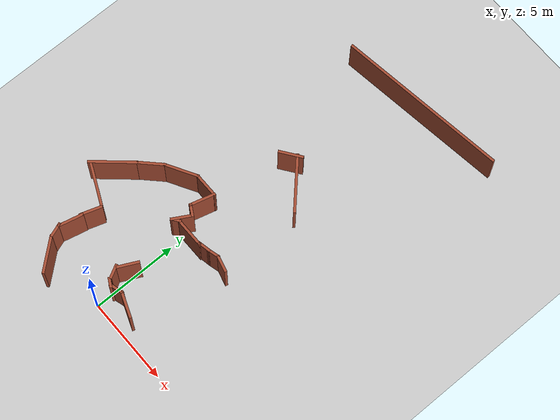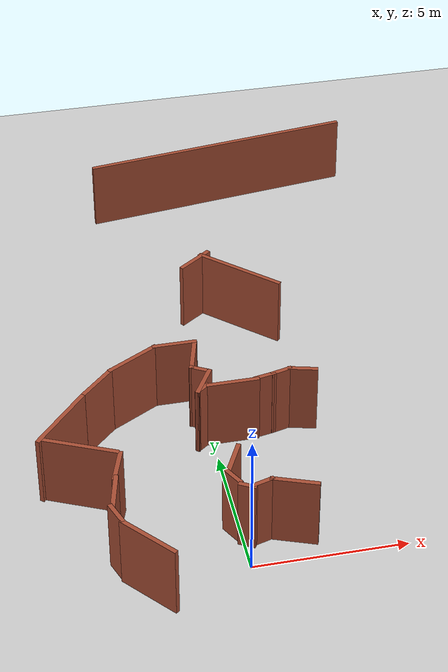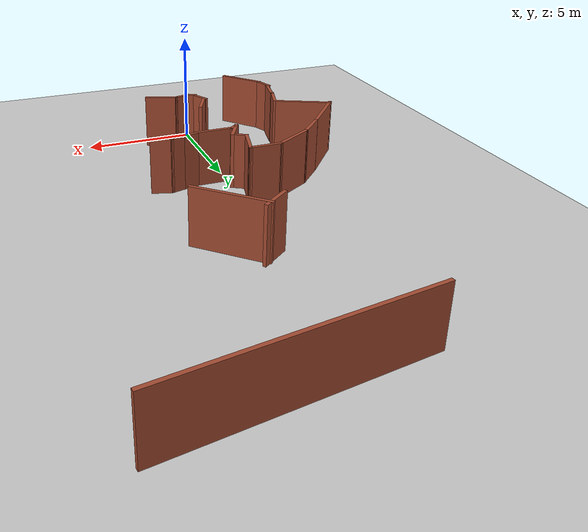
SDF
<sdf version="1.5">
 <world name="default">
  <model name="ground_plane">
   <static>1</static>
   <link name="link">
    <collision name="collision">
     <geometry><plane><normal>0 0 1</normal><size>100 100</size></plane></geometry>
     <surface><friction><ode><mu>100</mu><mu2>50</mu2></ode></friction></surface>
    </collision>
    <visual name="visual">
     <cast_shadows>0</cast_shadows>
     <geometry><plane><normal>0 0 1</normal><size>100 100</size></plane></geometry>
     <material>
      <script><uri>file://media/materials/scripts/gazebo.material</uri><name>Gazebo/Grey</name></script>
     </material>
    </visual>
   </link>
  </model>
  <model name="Untitled1111">
   <link name="Wall_0">
    <pose>-5.60346 -1.19188 0 0 -0 2.26915</pose>
    <visual name="Wall_0_Visual">
     <pose>0 0 1.25 0 -0 0</pose>
     <geometry><box><size>2.13585 0.15 2.5</size></box></geometry>
     <material>
      <script><uri>file://media/materials/scripts/gazebo.material</uri><name>Gazebo/Bricks</name></script>
      <ambient>1 1 1 1</ambient>
      <shader type="pixel"/>
     </material>
     <meta><layer>0</layer></meta>
    </visual>
    <collision name="Wall_0_Collision">
     <pose>0 0 1.25 0 -0 0</pose>
     <geometry><box><size>2.13585 0.15 2.5</size></box></geometry>
     <surface>
      <friction>
       <ode><mu>1</mu><mu2>1</mu2><fdir1>0 0 0</fdir1><slip1>0</slip1><slip2>0</slip2></ode>
       <torsional>
        <coefficient>1</coefficient>
        <patch_radius>0</patch_radius>
        <surface_radius>0</surface_radius>
        <use_patch_radius>1</use_patch_radius>
        <ode><slip>0</slip></ode>
       </torsional>
      </friction>
      <bounce><restitution_coefficient>0</restitution_coefficient><threshold>1e+06</threshold></bounce>
      <contact>
       <collide_without_contact>0</collide_without_contact>
       <collide_without_contact_bitmask>1</collide_without_contact_bitmask>
       <collide_bitmask>1</collide_bitmask>
       <ode>
        <soft_cfm>0</soft_cfm>
        <soft_erp>0.2</soft_erp>
        <kp>1e+13</kp>
        <kd>1</kd>
        <max_vel>0.01</max_vel>
        <min_depth>0</min_depth>
       </ode>
       <bullet>
        <split_impulse>1</split_impulse>
        <split_impulse_penetration_threshold>-0.01</split_impulse_penetration_threshold>
        <soft_cfm>0</soft_cfm>
        <soft_erp>0.2</soft_erp>
        <kp>1e+13</kp>
        <kd>1</kd>
       </bullet>
      </contact>
     </surface>
    </collision>
   </link>
   <link name="Wall_1">
    <pose>-6.35977 -0.045403 0 0 -0 1.91127</pose>
    <visual name="Wall_1_Visual">
     <pose>0 0 1.25 0 -0 0</pose>
     <geometry><box><size>0.856129 0.15 2.5</size></box></geometry>
     <material>
      <script><uri>file://media/materials/scripts/gazebo.material</uri><name>Gazebo/Bricks</name></script>
      <ambient>1 1 1 1</ambient>
      <shader type="pixel"/>
     </material>
     <meta><layer>0</layer></meta>
    </visual>
    <collision name="Wall_1_Collision">
     <pose>0 0 1.25 0 -0 0</pose>
     <geometry><box><size>0.856129 0.15 2.5</size></box></geometry>
     <surface>
      <friction>
       <ode><mu>1</mu><mu2>1</mu2><fdir1>0 0 0</fdir1><slip1>0</slip1><slip2>0</slip2></ode>
       <torsional>
        <coefficient>1</coefficient>
        <patch_radius>0</patch_radius>
        <surface_radius>0</surface_radius>
        <use_patch_radius>1</use_patch_radius>
        <ode><slip>0</slip></ode>
       </torsional>
      </friction>
      <bounce><restitution_coefficient>0</restitution_coefficient><threshold>1e+06</threshold></bounce>
      <contact>
       <collide_without_contact>0</collide_without_contact>
       <collide_without_contact_bitmask>1</collide_without_contact_bitmask>
       <collide_bitmask>1</collide_bitmask>
       <ode>
        <soft_cfm>0</soft_cfm>
        <soft_erp>0.2</soft_erp>
        <kp>1e+13</kp>
        <kd>1</kd>
        <max_vel>0.01</max_vel>
        <min_depth>0</min_depth>
       </ode>
       <bullet>
        <split_impulse>1</split_impulse>
        <split_impulse_penetration_threshold>-0.01</split_impulse_penetration_threshold>
        <soft_cfm>0</soft_cfm>
        <soft_erp>0.2</soft_erp>
        <kp>1e+13</kp>
        <kd>1</kd>
       </bullet>
      </contact>
     </surface>
    </collision>
   </link>
   <link name="Wall_10">
    <pose>-2.6358 6.01879 0 0 0 -0.523599</pose>
    <visual name="Wall_10_Visual">
     <pose>0 0 1.25 0 -0 0</pose>
     <geometry><box><size>0.75 0.15 2.5</size></box></geometry>
     <material>
      <script><uri>file://media/materials/scripts/gazebo.material</uri><name>Gazebo/Bricks</name></script>
      <ambient>1 1 1 1</ambient>
      <shader type="pixel"/>
     </material>
     <meta><layer>0</layer></meta>
    </visual>
    <collision name="Wall_10_Collision">
     <pose>0 0 1.25 0 -0 0</pose>
     <geometry><box><size>0.75 0.15 2.5</size></box></geometry>
     <surface>
      <friction>
       <ode><mu>1</mu><mu2>1</mu2><fdir1>0 0 0</fdir1><slip1>0</slip1><slip2>0</slip2></ode>
       <torsional>
        <coefficient>1</coefficient>
        <patch_radius>0</patch_radius>
        <surface_radius>0</surface_radius>
        <use_patch_radius>1</use_patch_radius>
        <ode><slip>0</slip></ode>
       </torsional>
      </friction>
      <bounce><restitution_coefficient>0</restitution_coefficient><threshold>1e+06</threshold></bounce>
      <contact>
       <collide_without_contact>0</collide_without_contact>
       <collide_without_contact_bitmask>1</collide_without_contact_bitmask>
       <collide_bitmask>1</collide_bitmask>
       <ode>
        <soft_cfm>0</soft_cfm>
        <soft_erp>0.2</soft_erp>
        <kp>1e+13</kp>
        <kd>1</kd>
        <max_vel>0.01</max_vel>
        <min_depth>0</min_depth>
       </ode>
       <bullet>
        <split_impulse>1</split_impulse>
        <split_impulse_penetration_threshold>-0.01</split_impulse_penetration_threshold>
        <soft_cfm>0</soft_cfm>
        <soft_erp>0.2</soft_erp>
        <kp>1e+13</kp>
        <kd>1</kd>
       </bullet>
      </contact>
     </surface>
    </collision>
   </link>
   <link name="Wall_11">
    <pose>-2.65099 5.39248 0 0 0 -2.0944</pose>
    <visual name="Wall_11_Visual">
     <pose>0 0 1.25 0 -0 0</pose>
     <geometry><box><size>1.25 0.15 2.5</size></box></geometry>
     <material>
      <script><uri>file://media/materials/scripts/gazebo.material</uri><name>Gazebo/Bricks</name></script>
      <ambient>1 1 1 1</ambient>
      <shader type="pixel"/>
     </material>
     <meta><layer>0</layer></meta>
    </visual>
    <collision name="Wall_11_Collision">
     <pose>0 0 1.25 0 -0 0</pose>
     <geometry><box><size>1.25 0.15 2.5</size></box></geometry>
     <surface>
      <friction>
       <ode><mu>1</mu><mu2>1</mu2><fdir1>0 0 0</fdir1><slip1>0</slip1><slip2>0</slip2></ode>
       <torsional>
        <coefficient>1</coefficient>
        <patch_radius>0</patch_radius>
        <surface_radius>0</surface_radius>
        <use_patch_radius>1</use_patch_radius>
        <ode><slip>0</slip></ode>
       </torsional>
      </friction>
      <bounce><restitution_coefficient>0</restitution_coefficient><threshold>1e+06</threshold></bounce>
      <contact>
       <collide_without_contact>0</collide_without_contact>
       <collide_without_contact_bitmask>1</collide_without_contact_bitmask>
       <collide_bitmask>1</collide_bitmask>
       <ode>
        <soft_cfm>0</soft_cfm>
        <soft_erp>0.2</soft_erp>
        <kp>1e+13</kp>
        <kd>1</kd>
        <max_vel>0.01</max_vel>
        <min_depth>0</min_depth>
       </ode>
       <bullet>
        <split_impulse>1</split_impulse>
        <split_impulse_penetration_threshold>-0.01</split_impulse_penetration_threshold>
        <soft_cfm>0</soft_cfm>
        <soft_erp>0.2</soft_erp>
        <kp>1e+13</kp>
        <kd>1</kd>
       </bullet>
      </contact>
     </surface>
    </collision>
   </link>
   <link name="Wall_12">
    <pose>-2.75032 5.05347 0 0 -0 0.663411</pose>
    <visual name="Wall_12_Visual">
     <pose>0 0 1.25 0 -0 0</pose>
     <geometry><box><size>0.595922 0.15 2.5</size></box></geometry>
     <material>
      <script><uri>file://media/materials/scripts/gazebo.material</uri><name>Gazebo/Bricks</name></script>
      <ambient>1 1 1 1</ambient>
      <shader type="pixel"/>
     </material>
     <meta><layer>0</layer></meta>
    </visual>
    <collision name="Wall_12_Collision">
     <pose>0 0 1.25 0 -0 0</pose>
     <geometry><box><size>0.595922 0.15 2.5</size></box></geometry>
     <surface>
      <friction>
       <ode><mu>1</mu><mu2>1</mu2><fdir1>0 0 0</fdir1><slip1>0</slip1><slip2>0</slip2></ode>
       <torsional>
        <coefficient>1</coefficient>
        <patch_radius>0</patch_radius>
        <surface_radius>0</surface_radius>
        <use_patch_radius>1</use_patch_radius>
        <ode><slip>0</slip></ode>
       </torsional>
      </friction>
      <bounce><restitution_coefficient>0</restitution_coefficient><threshold>1e+06</threshold></bounce>
      <contact>
       <collide_without_contact>0</collide_without_contact>
       <collide_without_contact_bitmask>1</collide_without_contact_bitmask>
       <collide_bitmask>1</collide_bitmask>
       <ode>
        <soft_cfm>0</soft_cfm>
        <soft_erp>0.2</soft_erp>
        <kp>1e+13</kp>
        <kd>1</kd>
        <max_vel>0.01</max_vel>
        <min_depth>0</min_depth>
       </ode>
       <bullet>
        <split_impulse>1</split_impulse>
        <split_impulse_penetration_threshold>-0.01</split_impulse_penetration_threshold>
        <soft_cfm>0</soft_cfm>
        <soft_erp>0.2</soft_erp>
        <kp>1e+13</kp>
        <kd>1</kd>
       </bullet>
      </contact>
     </surface>
    </collision>
   </link>
   <link name="Wall_13">
    <pose>-1.73967 5.15579 0 0 -0 0</pose>
    <visual name="Wall_13_Visual">
     <pose>0 0 1.25 0 -0 0</pose>
     <geometry><box><size>1.75 0.15 2.5</size></box></geometry>
     <material>
      <script><uri>file://media/materials/scripts/gazebo.material</uri><name>Gazebo/Bricks</name></script>
      <ambient>1 1 1 1</ambient>
      <shader type="pixel"/>
     </material>
     <meta><layer>0</layer></meta>
    </visual>
    <collision name="Wall_13_Collision">
     <pose>0 0 1.25 0 -0 0</pose>
     <geometry><box><size>1.75 0.15 2.5</size></box></geometry>
     <surface>
      <friction>
       <ode><mu>1</mu><mu2>1</mu2><fdir1>0 0 0</fdir1><slip1>0</slip1><slip2>0</slip2></ode>
       <torsional>
        <coefficient>1</coefficient>
        <patch_radius>0</patch_radius>
        <surface_radius>0</surface_radius>
        <use_patch_radius>1</use_patch_radius>
        <ode><slip>0</slip></ode>
       </torsional>
      </friction>
      <bounce><restitution_coefficient>0</restitution_coefficient><threshold>1e+06</threshold></bounce>
      <contact>
       <collide_without_contact>0</collide_without_contact>
       <collide_without_contact_bitmask>1</collide_without_contact_bitmask>
       <collide_bitmask>1</collide_bitmask>
       <ode>
        <soft_cfm>0</soft_cfm>
        <soft_erp>0.2</soft_erp>
        <kp>1e+13</kp>
        <kd>1</kd>
        <max_vel>0.01</max_vel>
        <min_depth>0</min_depth>
       </ode>
       <bullet>
        <split_impulse>1</split_impulse>
        <split_impulse_penetration_threshold>-0.01</split_impulse_penetration_threshold>
        <soft_cfm>0</soft_cfm>
        <soft_erp>0.2</soft_erp>
        <kp>1e+13</kp>
        <kd>1</kd>
       </bullet>
      </contact>
     </surface>
    </collision>
   </link>
   <link name="Wall_14">
    <pose>-0.672263 5.25149 0 0 -0 0.198157</pose>
    <visual name="Wall_14_Visual">
     <pose>0 0 1.25 0 -0 0</pose>
     <geometry><box><size>0.766849 0.15 2.5</size></box></geometry>
     <material>
      <script><uri>file://media/materials/scripts/gazebo.material</uri><name>Gazebo/Bricks</name></script>
      <ambient>1 1 1 1</ambient>
      <shader type="pixel"/>
     </material>
     <meta><layer>0</layer></meta>
    </visual>
    <collision name="Wall_14_Collision">
     <pose>0 0 1.25 0 -0 0</pose>
     <geometry><box><size>0.766849 0.15 2.5</size></box></geometry>
     <surface>
      <friction>
       <ode><mu>1</mu><mu2>1</mu2><fdir1>0 0 0</fdir1><slip1>0</slip1><slip2>0</slip2></ode>
       <torsional>
        <coefficient>1</coefficient>
        <patch_radius>0</patch_radius>
        <surface_radius>0</surface_radius>
        <use_patch_radius>1</use_patch_radius>
        <ode><slip>0</slip></ode>
       </torsional>
      </friction>
      <bounce><restitution_coefficient>0</restitution_coefficient><threshold>1e+06</threshold></bounce>
      <contact>
       <collide_without_contact>0</collide_without_contact>
       <collide_without_contact_bitmask>1</collide_without_contact_bitmask>
       <collide_bitmask>1</collide_bitmask>
       <ode>
        <soft_cfm>0</soft_cfm>
        <soft_erp>0.2</soft_erp>
        <kp>1e+13</kp>
        <kd>1</kd>
        <max_vel>0.01</max_vel>
        <min_depth>0</min_depth>
       </ode>
       <bullet>
        <split_impulse>1</split_impulse>
        <split_impulse_penetration_threshold>-0.01</split_impulse_penetration_threshold>
        <soft_cfm>0</soft_cfm>
        <soft_erp>0.2</soft_erp>
        <kp>1e+13</kp>
        <kd>1</kd>
       </bullet>
      </contact>
     </surface>
    </collision>
   </link>
   <link name="Wall_15">
    <pose>-0.080096 5.38985 0 0 -0 0.261799</pose>
    <visual name="Wall_15_Visual">
     <pose>0 0 1.25 0 -0 0</pose>
     <geometry><box><size>0.75 0.15 2.5</size></box></geometry>
     <material>
      <script><uri>file://media/materials/scripts/gazebo.material</uri><name>Gazebo/Bricks</name></script>
      <ambient>1 1 1 1</ambient>
      <shader type="pixel"/>
     </material>
     <meta><layer>0</layer></meta>
    </visual>
    <collision name="Wall_15_Collision">
     <pose>0 0 1.25 0 -0 0</pose>
     <geometry><box><size>0.75 0.15 2.5</size></box></geometry>
     <surface>
      <friction>
       <ode><mu>1</mu><mu2>1</mu2><fdir1>0 0 0</fdir1><slip1>0</slip1><slip2>0</slip2></ode>
       <torsional>
        <coefficient>1</coefficient>
        <patch_radius>0</patch_radius>
        <surface_radius>0</surface_radius>
        <use_patch_radius>1</use_patch_radius>
        <ode><slip>0</slip></ode>
       </torsional>
      </friction>
      <bounce><restitution_coefficient>0</restitution_coefficient><threshold>1e+06</threshold></bounce>
      <contact>
       <collide_without_contact>0</collide_without_contact>
       <collide_without_contact_bitmask>1</collide_without_contact_bitmask>
       <collide_bitmask>1</collide_bitmask>
       <ode>
        <soft_cfm>0</soft_cfm>
        <soft_erp>0.2</soft_erp>
        <kp>1e+13</kp>
        <kd>1</kd>
        <max_vel>0.01</max_vel>
        <min_depth>0</min_depth>
       </ode>
       <bullet>
        <split_impulse>1</split_impulse>
        <split_impulse_penetration_threshold>-0.01</split_impulse_penetration_threshold>
        <soft_cfm>0</soft_cfm>
        <soft_erp>0.2</soft_erp>
        <kp>1e+13</kp>
        <kd>1</kd>
       </bullet>
      </contact>
     </surface>
    </collision>
   </link>
   <link name="Wall_16">
    <pose>0.6202 5.3575 0 0 0 -0.261799</pose>
    <visual name="Wall_16_Visual">
     <pose>0 0 1.25 0 -0 0</pose>
     <geometry><box><size>1 0.15 2.5</size></box></geometry>
     <material>
      <script><uri>file://media/materials/scripts/gazebo.material</uri><name>Gazebo/Bricks</name></script>
      <ambient>1 1 1 1</ambient>
      <shader type="pixel"/>
     </material>
     <meta><layer>0</layer></meta>
    </visual>
    <collision name="Wall_16_Collision">
     <pose>0 0 1.25 0 -0 0</pose>
     <geometry><box><size>1 0.15 2.5</size></box></geometry>
     <surface>
      <friction>
       <ode><mu>1</mu><mu2>1</mu2><fdir1>0 0 0</fdir1><slip1>0</slip1><slip2>0</slip2></ode>
       <torsional>
        <coefficient>1</coefficient>
        <patch_radius>0</patch_radius>
        <surface_radius>0</surface_radius>
        <use_patch_radius>1</use_patch_radius>
        <ode><slip>0</slip></ode>
       </torsional>
      </friction>
      <bounce><restitution_coefficient>0</restitution_coefficient><threshold>1e+06</threshold></bounce>
      <contact>
       <collide_without_contact>0</collide_without_contact>
       <collide_without_contact_bitmask>1</collide_without_contact_bitmask>
       <collide_bitmask>1</collide_bitmask>
       <ode>
        <soft_cfm>0</soft_cfm>
        <soft_erp>0.2</soft_erp>
        <kp>1e+13</kp>
        <kd>1</kd>
        <max_vel>0.01</max_vel>
        <min_depth>0</min_depth>
       </ode>
       <bullet>
        <split_impulse>1</split_impulse>
        <split_impulse_penetration_threshold>-0.01</split_impulse_penetration_threshold>
        <soft_cfm>0</soft_cfm>
        <soft_erp>0.2</soft_erp>
        <kp>1e+13</kp>
        <kd>1</kd>
       </bullet>
      </contact>
     </surface>
    </collision>
   </link>
   <link name="Wall_182">
    <pose>0.624028 19.2141 0 0 -0 0.136321</pose>
    <visual name="Wall_182_Visual">
     <pose>0 0 1.25 0 -0 0</pose>
     <geometry><box><size>9.92535 0.15 2.5</size></box></geometry>
     <material>
      <script><uri>file://media/materials/scripts/gazebo.material</uri><name>Gazebo/Bricks</name></script>
      <ambient>1 1 1 1</ambient>
      <shader type="pixel"/>
     </material>
     <meta><layer>0</layer></meta>
    </visual>
    <collision name="Wall_182_Collision">
     <pose>0 0 1.25 0 -0 0</pose>
     <geometry><box><size>9.92535 0.15 2.5</size></box></geometry>
     <surface>
      <friction>
       <ode><mu>1</mu><mu2>1</mu2><fdir1>0 0 0</fdir1><slip1>0</slip1><slip2>0</slip2></ode>
       <torsional>
        <coefficient>1</coefficient>
        <patch_radius>0</patch_radius>
        <surface_radius>0</surface_radius>
        <use_patch_radius>1</use_patch_radius>
        <ode><slip>0</slip></ode>
       </torsional>
      </friction>
      <bounce><restitution_coefficient>0</restitution_coefficient><threshold>1e+06</threshold></bounce>
      <contact>
       <collide_without_contact>0</collide_without_contact>
       <collide_without_contact_bitmask>1</collide_without_contact_bitmask>
       <collide_bitmask>1</collide_bitmask>
       <ode>
        <soft_cfm>0</soft_cfm>
        <soft_erp>0.2</soft_erp>
        <kp>1e+13</kp>
        <kd>1</kd>
        <max_vel>0.01</max_vel>
        <min_depth>0</min_depth>
       </ode>
       <bullet>
        <split_impulse>1</split_impulse>
        <split_impulse_penetration_threshold>-0.01</split_impulse_penetration_threshold>
        <soft_cfm>0</soft_cfm>
        <soft_erp>0.2</soft_erp>
        <kp>1e+13</kp>
        <kd>1</kd>
       </bullet>
      </contact>
     </surface>
    </collision>
   </link>
   <link name="Wall_2">
    <pose>-6.27387 0.870109 0 0 -0 1.33825</pose>
    <visual name="Wall_2_Visual">
     <pose>0 0 1.25 0 -0 0</pose>
     <geometry><box><size>1.45701 0.15 2.5</size></box></geometry>
     <material>
      <script><uri>file://media/materials/scripts/gazebo.material</uri><name>Gazebo/Bricks</name></script>
      <ambient>1 1 1 1</ambient>
      <shader type="pixel"/>
     </material>
     <meta><layer>0</layer></meta>
    </visual>
    <collision name="Wall_2_Collision">
     <pose>0 0 1.25 0 -0 0</pose>
     <geometry><box><size>1.45701 0.15 2.5</size></box></geometry>
     <surface>
      <friction>
       <ode><mu>1</mu><mu2>1</mu2><fdir1>0 0 0</fdir1><slip1>0</slip1><slip2>0</slip2></ode>
       <torsional>
        <coefficient>1</coefficient>
        <patch_radius>0</patch_radius>
        <surface_radius>0</surface_radius>
        <use_patch_radius>1</use_patch_radius>
        <ode><slip>0</slip></ode>
       </torsional>
      </friction>
      <bounce><restitution_coefficient>0</restitution_coefficient><threshold>1e+06</threshold></bounce>
      <contact>
       <collide_without_contact>0</collide_without_contact>
       <collide_without_contact_bitmask>1</collide_without_contact_bitmask>
       <collide_bitmask>1</collide_bitmask>
       <ode>
        <soft_cfm>0</soft_cfm>
        <soft_erp>0.2</soft_erp>
        <kp>1e+13</kp>
        <kd>1</kd>
        <max_vel>0.01</max_vel>
        <min_depth>0</min_depth>
       </ode>
       <bullet>
        <split_impulse>1</split_impulse>
        <split_impulse_penetration_threshold>-0.01</split_impulse_penetration_threshold>
        <soft_cfm>0</soft_cfm>
        <soft_erp>0.2</soft_erp>
        <kp>1e+13</kp>
        <kd>1</kd>
       </bullet>
      </contact>
     </surface>
    </collision>
   </link>
   <link name="Wall_3">
    <pose>-5.99948 1.9931 0 0 -0 1.25423</pose>
    <visual name="Wall_3_Visual">
     <pose>0 0 1.25 0 -0 0</pose>
     <geometry><box><size>1.28706 0.15 2.5</size></box></geometry>
     <material>
      <script><uri>file://media/materials/scripts/gazebo.material</uri><name>Gazebo/Bricks</name></script>
      <ambient>1 1 1 1</ambient>
      <shader type="pixel"/>
     </material>
     <meta><layer>0</layer></meta>
    </visual>
    <collision name="Wall_3_Collision">
     <pose>0 0 1.25 0 -0 0</pose>
     <geometry><box><size>1.28706 0.15 2.5</size></box></geometry>
     <surface>
      <friction>
       <ode><mu>1</mu><mu2>1</mu2><fdir1>0 0 0</fdir1><slip1>0</slip1><slip2>0</slip2></ode>
       <torsional>
        <coefficient>1</coefficient>
        <patch_radius>0</patch_radius>
        <surface_radius>0</surface_radius>
        <use_patch_radius>1</use_patch_radius>
        <ode><slip>0</slip></ode>
       </torsional>
      </friction>
      <bounce><restitution_coefficient>0</restitution_coefficient><threshold>1e+06</threshold></bounce>
      <contact>
       <collide_without_contact>0</collide_without_contact>
       <collide_without_contact_bitmask>1</collide_without_contact_bitmask>
       <collide_bitmask>1</collide_bitmask>
       <ode>
        <soft_cfm>0</soft_cfm>
        <soft_erp>0.2</soft_erp>
        <kp>1e+13</kp>
        <kd>1</kd>
        <max_vel>0.01</max_vel>
        <min_depth>0</min_depth>
       </ode>
       <bullet>
        <split_impulse>1</split_impulse>
        <split_impulse_penetration_threshold>-0.01</split_impulse_penetration_threshold>
        <soft_cfm>0</soft_cfm>
        <soft_erp>0.2</soft_erp>
        <kp>1e+13</kp>
        <kd>1</kd>
       </bullet>
      </contact>
     </surface>
    </collision>
   </link>
   <link name="Wall_30">
    <pose>-2.46568 1.63142 0 0 0 -2.0319</pose>
    <visual name="Wall_30_Visual">
     <pose>0 0 1.25 0 -0 0</pose>
     <geometry><box><size>1.26072 0.15 2.5</size></box></geometry>
     <material>
      <script><uri>file://media/materials/scripts/gazebo.material</uri><name>Gazebo/Bricks</name></script>
      <ambient>1 1 1 1</ambient>
      <shader type="pixel"/>
     </material>
     <meta><layer>0</layer></meta>
    </visual>
    <collision name="Wall_30_Collision">
     <pose>0 0 1.25 0 -0 0</pose>
     <geometry><box><size>1.26072 0.15 2.5</size></box></geometry>
     <surface>
      <friction>
       <ode><mu>1</mu><mu2>1</mu2><fdir1>0 0 0</fdir1><slip1>0</slip1><slip2>0</slip2></ode>
       <torsional>
        <coefficient>1</coefficient>
        <patch_radius>0</patch_radius>
        <surface_radius>0</surface_radius>
        <use_patch_radius>1</use_patch_radius>
        <ode><slip>0</slip></ode>
       </torsional>
      </friction>
      <bounce><restitution_coefficient>0</restitution_coefficient><threshold>1e+06</threshold></bounce>
      <contact>
       <collide_without_contact>0</collide_without_contact>
       <collide_without_contact_bitmask>1</collide_without_contact_bitmask>
       <collide_bitmask>1</collide_bitmask>
       <ode>
        <soft_cfm>0</soft_cfm>
        <soft_erp>0.2</soft_erp>
        <kp>1e+13</kp>
        <kd>1</kd>
        <max_vel>0.01</max_vel>
        <min_depth>0</min_depth>
       </ode>
       <bullet>
        <split_impulse>1</split_impulse>
        <split_impulse_penetration_threshold>-0.01</split_impulse_penetration_threshold>
        <soft_cfm>0</soft_cfm>
        <soft_erp>0.2</soft_erp>
        <kp>1e+13</kp>
        <kd>1</kd>
       </bullet>
      </contact>
     </surface>
    </collision>
   </link>
   <link name="Wall_31">
    <pose>-2.65958 0.834061 0 0 0 -1.08187</pose>
    <visual name="Wall_31_Visual">
     <pose>0 0 1.25 0 -0 0</pose>
     <geometry><box><size>0.829625 0.15 2.5</size></box></geometry>
     <material>
      <script><uri>file://media/materials/scripts/gazebo.material</uri><name>Gazebo/Bricks</name></script>
      <ambient>1 1 1 1</ambient>
      <shader type="pixel"/>
     </material>
     <meta><layer>0</layer></meta>
    </visual>
    <collision name="Wall_31_Collision">
     <pose>0 0 1.25 0 -0 0</pose>
     <geometry><box><size>0.829625 0.15 2.5</size></box></geometry>
     <surface>
      <friction>
       <ode><mu>1</mu><mu2>1</mu2><fdir1>0 0 0</fdir1><slip1>0</slip1><slip2>0</slip2></ode>
       <torsional>
        <coefficient>1</coefficient>
        <patch_radius>0</patch_radius>
        <surface_radius>0</surface_radius>
        <use_patch_radius>1</use_patch_radius>
        <ode><slip>0</slip></ode>
       </torsional>
      </friction>
      <bounce><restitution_coefficient>0</restitution_coefficient><threshold>1e+06</threshold></bounce>
      <contact>
       <collide_without_contact>0</collide_without_contact>
       <collide_without_contact_bitmask>1</collide_without_contact_bitmask>
       <collide_bitmask>1</collide_bitmask>
       <ode>
        <soft_cfm>0</soft_cfm>
        <soft_erp>0.2</soft_erp>
        <kp>1e+13</kp>
        <kd>1</kd>
        <max_vel>0.01</max_vel>
        <min_depth>0</min_depth>
       </ode>
       <bullet>
        <split_impulse>1</split_impulse>
        <split_impulse_penetration_threshold>-0.01</split_impulse_penetration_threshold>
        <soft_cfm>0</soft_cfm>
        <soft_erp>0.2</soft_erp>
        <kp>1e+13</kp>
        <kd>1</kd>
       </bullet>
      </contact>
     </surface>
    </collision>
   </link>
   <link name="Wall_32">
    <pose>-2.31378 0.321863 0 0 0 -0.516701</pose>
    <visual name="Wall_32_Visual">
     <pose>0 0 1.25 0 -0 0</pose>
     <geometry><box><size>0.578318 0.15 2.5</size></box></geometry>
     <material>
      <script><uri>file://media/materials/scripts/gazebo.material</uri><name>Gazebo/Bricks</name></script>
      <ambient>1 1 1 1</ambient>
      <shader type="pixel"/>
     </material>
     <meta><layer>0</layer></meta>
    </visual>
    <collision name="Wall_32_Collision">
     <pose>0 0 1.25 0 -0 0</pose>
     <geometry><box><size>0.578318 0.15 2.5</size></box></geometry>
     <surface>
      <friction>
       <ode><mu>1</mu><mu2>1</mu2><fdir1>0 0 0</fdir1><slip1>0</slip1><slip2>0</slip2></ode>
       <torsional>
        <coefficient>1</coefficient>
        <patch_radius>0</patch_radius>
        <surface_radius>0</surface_radius>
        <use_patch_radius>1</use_patch_radius>
        <ode><slip>0</slip></ode>
       </torsional>
      </friction>
      <bounce><restitution_coefficient>0</restitution_coefficient><threshold>1e+06</threshold></bounce>
      <contact>
       <collide_without_contact>0</collide_without_contact>
       <collide_without_contact_bitmask>1</collide_without_contact_bitmask>
       <collide_bitmask>1</collide_bitmask>
       <ode>
        <soft_cfm>0</soft_cfm>
        <soft_erp>0.2</soft_erp>
        <kp>1e+13</kp>
        <kd>1</kd>
        <max_vel>0.01</max_vel>
        <min_depth>0</min_depth>
       </ode>
       <bullet>
        <split_impulse>1</split_impulse>
        <split_impulse_penetration_threshold>-0.01</split_impulse_penetration_threshold>
        <soft_cfm>0</soft_cfm>
        <soft_erp>0.2</soft_erp>
        <kp>1e+13</kp>
        <kd>1</kd>
       </bullet>
      </contact>
     </surface>
    </collision>
   </link>
   <link name="Wall_33">
    <pose>-1.85365 0.367748 0 0 -0 0.292428</pose>
    <visual name="Wall_33_Visual">
     <pose>0 0 1.25 0 -0 0</pose>
     <geometry><box><size>0.833247 0.15 2.5</size></box></geometry>
     <material>
      <script><uri>file://media/materials/scripts/gazebo.material</uri><name>Gazebo/Bricks</name></script>
      <ambient>1 1 1 1</ambient>
      <shader type="pixel"/>
     </material>
     <meta><layer>0</layer></meta>
    </visual>
    <collision name="Wall_33_Collision">
     <pose>0 0 1.25 0 -0 0</pose>
     <geometry><box><size>0.833247 0.15 2.5</size></box></geometry>
     <surface>
      <friction>
       <ode><mu>1</mu><mu2>1</mu2><fdir1>0 0 0</fdir1><slip1>0</slip1><slip2>0</slip2></ode>
       <torsional>
        <coefficient>1</coefficient>
        <patch_radius>0</patch_radius>
        <surface_radius>0</surface_radius>
        <use_patch_radius>1</use_patch_radius>
        <ode><slip>0</slip></ode>
       </torsional>
      </friction>
      <bounce><restitution_coefficient>0</restitution_coefficient><threshold>1e+06</threshold></bounce>
      <contact>
       <collide_without_contact>0</collide_without_contact>
       <collide_without_contact_bitmask>1</collide_without_contact_bitmask>
       <collide_bitmask>1</collide_bitmask>
       <ode>
        <soft_cfm>0</soft_cfm>
        <soft_erp>0.2</soft_erp>
        <kp>1e+13</kp>
        <kd>1</kd>
        <max_vel>0.01</max_vel>
        <min_depth>0</min_depth>
       </ode>
       <bullet>
        <split_impulse>1</split_impulse>
        <split_impulse_penetration_threshold>-0.01</split_impulse_penetration_threshold>
        <soft_cfm>0</soft_cfm>
        <soft_erp>0.2</soft_erp>
        <kp>1e+13</kp>
        <kd>1</kd>
       </bullet>
      </contact>
     </surface>
    </collision>
   </link>
   <link name="Wall_34">
    <pose>-0.874534 0.21533 0 0 0 -0.367349</pose>
    <visual name="Wall_34_Visual">
     <pose>0 0 1.25 0 -0 0</pose>
     <geometry><box><size>1.54722 0.15 2.5</size></box></geometry>
     <material>
      <script><uri>file://media/materials/scripts/gazebo.material</uri><name>Gazebo/Bricks</name></script>
      <ambient>1 1 1 1</ambient>
      <shader type="pixel"/>
     </material>
     <meta><layer>0</layer></meta>
    </visual>
    <collision name="Wall_34_Collision">
     <pose>0 0 1.25 0 -0 0</pose>
     <geometry><box><size>1.54722 0.15 2.5</size></box></geometry>
     <surface>
      <friction>
       <ode><mu>1</mu><mu2>1</mu2><fdir1>0 0 0</fdir1><slip1>0</slip1><slip2>0</slip2></ode>
       <torsional>
        <coefficient>1</coefficient>
        <patch_radius>0</patch_radius>
        <surface_radius>0</surface_radius>
        <use_patch_radius>1</use_patch_radius>
        <ode><slip>0</slip></ode>
       </torsional>
      </friction>
      <bounce><restitution_coefficient>0</restitution_coefficient><threshold>1e+06</threshold></bounce>
      <contact>
       <collide_without_contact>0</collide_without_contact>
       <collide_without_contact_bitmask>1</collide_without_contact_bitmask>
       <collide_bitmask>1</collide_bitmask>
       <ode>
        <soft_cfm>0</soft_cfm>
        <soft_erp>0.2</soft_erp>
        <kp>1e+13</kp>
        <kd>1</kd>
        <max_vel>0.01</max_vel>
        <min_depth>0</min_depth>
       </ode>
       <bullet>
        <split_impulse>1</split_impulse>
        <split_impulse_penetration_threshold>-0.01</split_impulse_penetration_threshold>
        <soft_cfm>0</soft_cfm>
        <soft_erp>0.2</soft_erp>
        <kp>1e+13</kp>
        <kd>1</kd>
       </bullet>
      </contact>
     </surface>
    </collision>
   </link>
   <link name="Wall_4">
    <pose>-7.02821 3.14773 0 0 -0 2.70325</pose>
    <visual name="Wall_4_Visual">
     <pose>0 0 1.25 0 -0 0</pose>
     <geometry><box><size>2.60887 0.15 2.5</size></box></geometry>
     <material>
      <script><uri>file://media/materials/scripts/gazebo.material</uri><name>Gazebo/Bricks</name></script>
      <ambient>1 1 1 1</ambient>
      <shader type="pixel"/>
     </material>
     <meta><layer>0</layer></meta>
    </visual>
    <collision name="Wall_4_Collision">
     <pose>0 0 1.25 0 -0 0</pose>
     <geometry><box><size>2.60887 0.15 2.5</size></box></geometry>
     <surface>
      <friction>
       <ode><mu>1</mu><mu2>1</mu2><fdir1>0 0 0</fdir1><slip1>0</slip1><slip2>0</slip2></ode>
       <torsional>
        <coefficient>1</coefficient>
        <patch_radius>0</patch_radius>
        <surface_radius>0</surface_radius>
        <use_patch_radius>1</use_patch_radius>
        <ode><slip>0</slip></ode>
       </torsional>
      </friction>
      <bounce><restitution_coefficient>0</restitution_coefficient><threshold>1e+06</threshold></bounce>
      <contact>
       <collide_without_contact>0</collide_without_contact>
       <collide_without_contact_bitmask>1</collide_without_contact_bitmask>
       <collide_bitmask>1</collide_bitmask>
       <ode>
        <soft_cfm>0</soft_cfm>
        <soft_erp>0.2</soft_erp>
        <kp>1e+13</kp>
        <kd>1</kd>
        <max_vel>0.01</max_vel>
        <min_depth>0</min_depth>
       </ode>
       <bullet>
        <split_impulse>1</split_impulse>
        <split_impulse_penetration_threshold>-0.01</split_impulse_penetration_threshold>
        <soft_cfm>0</soft_cfm>
        <soft_erp>0.2</soft_erp>
        <kp>1e+13</kp>
        <kd>1</kd>
       </bullet>
      </contact>
     </surface>
    </collision>
   </link>
   <link name="Wall_5">
    <pose>-7.37481 4.55469 0 0 -0 0.852123</pose>
    <visual name="Wall_5_Visual">
     <pose>0 0 1.25 0 -0 0</pose>
     <geometry><box><size>2.66455 0.15 2.5</size></box></geometry>
     <material>
      <script><uri>file://media/materials/scripts/gazebo.material</uri><name>Gazebo/Bricks</name></script>
      <ambient>1 1 1 1</ambient>
      <shader type="pixel"/>
     </material>
     <meta><layer>0</layer></meta>
    </visual>
    <collision name="Wall_5_Collision">
     <pose>0 0 1.25 0 -0 0</pose>
     <geometry><box><size>2.66455 0.15 2.5</size></box></geometry>
     <surface>
      <friction>
       <ode><mu>1</mu><mu2>1</mu2><fdir1>0 0 0</fdir1><slip1>0</slip1><slip2>0</slip2></ode>
       <torsional>
        <coefficient>1</coefficient>
        <patch_radius>0</patch_radius>
        <surface_radius>0</surface_radius>
        <use_patch_radius>1</use_patch_radius>
        <ode><slip>0</slip></ode>
       </torsional>
      </friction>
      <bounce><restitution_coefficient>0</restitution_coefficient><threshold>1e+06</threshold></bounce>
      <contact>
       <collide_without_contact>0</collide_without_contact>
       <collide_without_contact_bitmask>1</collide_without_contact_bitmask>
       <collide_bitmask>1</collide_bitmask>
       <ode>
        <soft_cfm>0</soft_cfm>
        <soft_erp>0.2</soft_erp>
        <kp>1e+13</kp>
        <kd>1</kd>
        <max_vel>0.01</max_vel>
        <min_depth>0</min_depth>
       </ode>
       <bullet>
        <split_impulse>1</split_impulse>
        <split_impulse_penetration_threshold>-0.01</split_impulse_penetration_threshold>
        <soft_cfm>0</soft_cfm>
        <soft_erp>0.2</soft_erp>
        <kp>1e+13</kp>
        <kd>1</kd>
       </bullet>
      </contact>
     </surface>
    </collision>
   </link>
   <link name="Wall_52">
    <pose>-0.25176 11.1535 0 0 -0 2.38443</pose>
    <visual name="Wall_52_Visual">
     <pose>0 0 1.25 0 -0 0</pose>
     <geometry><box><size>3.29205 0.15 2.5</size></box></geometry>
     <material>
      <script><uri>file://media/materials/scripts/gazebo.material</uri><name>Gazebo/Bricks</name></script>
      <ambient>1 1 1 1</ambient>
      <shader type="pixel"/>
     </material>
     <meta><layer>0</layer></meta>
    </visual>
    <collision name="Wall_52_Collision">
     <pose>0 0 1.25 0 -0 0</pose>
     <geometry><box><size>3.29205 0.15 2.5</size></box></geometry>
     <surface>
      <friction>
       <ode><mu>1</mu><mu2>1</mu2><fdir1>0 0 0</fdir1><slip1>0</slip1><slip2>0</slip2></ode>
       <torsional>
        <coefficient>1</coefficient>
        <patch_radius>0</patch_radius>
        <surface_radius>0</surface_radius>
        <use_patch_radius>1</use_patch_radius>
        <ode><slip>0</slip></ode>
       </torsional>
      </friction>
      <bounce><restitution_coefficient>0</restitution_coefficient><threshold>1e+06</threshold></bounce>
      <contact>
       <collide_without_contact>0</collide_without_contact>
       <collide_without_contact_bitmask>1</collide_without_contact_bitmask>
       <collide_bitmask>1</collide_bitmask>
       <ode>
        <soft_cfm>0</soft_cfm>
        <soft_erp>0.2</soft_erp>
        <kp>1e+13</kp>
        <kd>1</kd>
        <max_vel>0.01</max_vel>
        <min_depth>0</min_depth>
       </ode>
       <bullet>
        <split_impulse>1</split_impulse>
        <split_impulse_penetration_threshold>-0.01</split_impulse_penetration_threshold>
        <soft_cfm>0</soft_cfm>
        <soft_erp>0.2</soft_erp>
        <kp>1e+13</kp>
        <kd>1</kd>
       </bullet>
      </contact>
     </surface>
    </collision>
   </link>
   <link name="Wall_53">
    <pose>-1.65181 11.9908 0 0 0 -2.51542</pose>
    <visual name="Wall_53_Visual">
     <pose>0 0 1.25 0 -0 0</pose>
     <geometry><box><size>1.39492 0.15 2.5</size></box></geometry>
     <material>
      <script><uri>file://media/materials/scripts/gazebo.material</uri><name>Gazebo/Bricks</name></script>
      <ambient>1 1 1 1</ambient>
      <shader type="pixel"/>
     </material>
     <meta><layer>0</layer></meta>
    </visual>
    <collision name="Wall_53_Collision">
     <pose>0 0 1.25 0 -0 0</pose>
     <geometry><box><size>1.39492 0.15 2.5</size></box></geometry>
     <surface>
      <friction>
       <ode><mu>1</mu><mu2>1</mu2><fdir1>0 0 0</fdir1><slip1>0</slip1><slip2>0</slip2></ode>
       <torsional>
        <coefficient>1</coefficient>
        <patch_radius>0</patch_radius>
        <surface_radius>0</surface_radius>
        <use_patch_radius>1</use_patch_radius>
        <ode><slip>0</slip></ode>
       </torsional>
      </friction>
      <bounce><restitution_coefficient>0</restitution_coefficient><threshold>1e+06</threshold></bounce>
      <contact>
       <collide_without_contact>0</collide_without_contact>
       <collide_without_contact_bitmask>1</collide_without_contact_bitmask>
       <collide_bitmask>1</collide_bitmask>
       <ode>
        <soft_cfm>0</soft_cfm>
        <soft_erp>0.2</soft_erp>
        <kp>1e+13</kp>
        <kd>1</kd>
        <max_vel>0.01</max_vel>
        <min_depth>0</min_depth>
       </ode>
       <bullet>
        <split_impulse>1</split_impulse>
        <split_impulse_penetration_threshold>-0.01</split_impulse_penetration_threshold>
        <soft_cfm>0</soft_cfm>
        <soft_erp>0.2</soft_erp>
        <kp>1e+13</kp>
        <kd>1</kd>
       </bullet>
      </contact>
     </surface>
    </collision>
   </link>
   <link name="Wall_6">
    <pose>-5.9921 6.055 0 0 -0 0.784425</pose>
    <visual name="Wall_6_Visual">
     <pose>0 0 1.25 0 -0 0</pose>
     <geometry><box><size>1.5452 0.15 2.5</size></box></geometry>
     <material>
      <script><uri>file://media/materials/scripts/gazebo.material</uri><name>Gazebo/Bricks</name></script>
      <ambient>1 1 1 1</ambient>
      <shader type="pixel"/>
     </material>
     <meta><layer>0</layer></meta>
    </visual>
    <collision name="Wall_6_Collision">
     <pose>0 0 1.25 0 -0 0</pose>
     <geometry><box><size>1.5452 0.15 2.5</size></box></geometry>
     <surface>
      <friction>
       <ode><mu>1</mu><mu2>1</mu2><fdir1>0 0 0</fdir1><slip1>0</slip1><slip2>0</slip2></ode>
       <torsional>
        <coefficient>1</coefficient>
        <patch_radius>0</patch_radius>
        <surface_radius>0</surface_radius>
        <use_patch_radius>1</use_patch_radius>
        <ode><slip>0</slip></ode>
       </torsional>
      </friction>
      <bounce><restitution_coefficient>0</restitution_coefficient><threshold>1e+06</threshold></bounce>
      <contact>
       <collide_without_contact>0</collide_without_contact>
       <collide_without_contact_bitmask>1</collide_without_contact_bitmask>
       <collide_bitmask>1</collide_bitmask>
       <ode>
        <soft_cfm>0</soft_cfm>
        <soft_erp>0.2</soft_erp>
        <kp>1e+13</kp>
        <kd>1</kd>
        <max_vel>0.01</max_vel>
        <min_depth>0</min_depth>
       </ode>
       <bullet>
        <split_impulse>1</split_impulse>
        <split_impulse_penetration_threshold>-0.01</split_impulse_penetration_threshold>
        <soft_cfm>0</soft_cfm>
        <soft_erp>0.2</soft_erp>
        <kp>1e+13</kp>
        <kd>1</kd>
       </bullet>
      </contact>
     </surface>
    </collision>
   </link>
   <link name="Wall_7">
    <pose>-4.69728 7.01029 0 0 -0 0.523599</pose>
    <visual name="Wall_7_Visual">
     <pose>0 0 1.25 0 -0 0</pose>
     <geometry><box><size>2 0.15 2.5</size></box></geometry>
     <material>
      <script><uri>file://media/materials/scripts/gazebo.material</uri><name>Gazebo/Bricks</name></script>
      <ambient>1 1 1 1</ambient>
      <shader type="pixel"/>
     </material>
     <meta><layer>0</layer></meta>
    </visual>
    <collision name="Wall_7_Collision">
     <pose>0 0 1.25 0 -0 0</pose>
     <geometry><box><size>2 0.15 2.5</size></box></geometry>
     <surface>
      <friction>
       <ode><mu>1</mu><mu2>1</mu2><fdir1>0 0 0</fdir1><slip1>0</slip1><slip2>0</slip2></ode>
       <torsional>
        <coefficient>1</coefficient>
        <patch_radius>0</patch_radius>
        <surface_radius>0</surface_radius>
        <use_patch_radius>1</use_patch_radius>
        <ode><slip>0</slip></ode>
       </torsional>
      </friction>
      <bounce><restitution_coefficient>0</restitution_coefficient><threshold>1e+06</threshold></bounce>
      <contact>
       <collide_without_contact>0</collide_without_contact>
       <collide_without_contact_bitmask>1</collide_without_contact_bitmask>
       <collide_bitmask>1</collide_bitmask>
       <ode>
        <soft_cfm>0</soft_cfm>
        <soft_erp>0.2</soft_erp>
        <kp>1e+13</kp>
        <kd>1</kd>
        <max_vel>0.01</max_vel>
        <min_depth>0</min_depth>
       </ode>
       <bullet>
        <split_impulse>1</split_impulse>
        <split_impulse_penetration_threshold>-0.01</split_impulse_penetration_threshold>
        <soft_cfm>0</soft_cfm>
        <soft_erp>0.2</soft_erp>
        <kp>1e+13</kp>
        <kd>1</kd>
       </bullet>
      </contact>
     </surface>
    </collision>
   </link>
   <link name="Wall_8">
    <pose>-3.2212 7.47279 0 0 -0 0</pose>
    <visual name="Wall_8_Visual">
     <pose>0 0 1.25 0 -0 0</pose>
     <geometry><box><size>1.5 0.15 2.5</size></box></geometry>
     <material>
      <script><uri>file://media/materials/scripts/gazebo.material</uri><name>Gazebo/Bricks</name></script>
      <ambient>1 1 1 1</ambient>
      <shader type="pixel"/>
     </material>
     <meta><layer>0</layer></meta>
    </visual>
    <collision name="Wall_8_Collision">
     <pose>0 0 1.25 0 -0 0</pose>
     <geometry><box><size>1.5 0.15 2.5</size></box></geometry>
     <surface>
      <friction>
       <ode><mu>1</mu><mu2>1</mu2><fdir1>0 0 0</fdir1><slip1>0</slip1><slip2>0</slip2></ode>
       <torsional>
        <coefficient>1</coefficient>
        <patch_radius>0</patch_radius>
        <surface_radius>0</surface_radius>
        <use_patch_radius>1</use_patch_radius>
        <ode><slip>0</slip></ode>
       </torsional>
      </friction>
      <bounce><restitution_coefficient>0</restitution_coefficient><threshold>1e+06</threshold></bounce>
      <contact>
       <collide_without_contact>0</collide_without_contact>
       <collide_without_contact_bitmask>1</collide_without_contact_bitmask>
       <collide_bitmask>1</collide_bitmask>
       <ode>
        <soft_cfm>0</soft_cfm>
        <soft_erp>0.2</soft_erp>
        <kp>1e+13</kp>
        <kd>1</kd>
        <max_vel>0.01</max_vel>
        <min_depth>0</min_depth>
       </ode>
       <bullet>
        <split_impulse>1</split_impulse>
        <split_impulse_penetration_threshold>-0.01</split_impulse_penetration_threshold>
        <soft_cfm>0</soft_cfm>
        <soft_erp>0.2</soft_erp>
        <kp>1e+13</kp>
        <kd>1</kd>
       </bullet>
      </contact>
     </surface>
    </collision>
   </link>
   <link name="Wall_9">
    <pose>-2.7209 6.82079 0 0 0 -1.8326</pose>
    <visual name="Wall_9_Visual">
     <pose>0 0 1.25 0 -0 0</pose>
     <geometry><box><size>1.5 0.15 2.5</size></box></geometry>
     <material>
      <script><uri>file://media/materials/scripts/gazebo.material</uri><name>Gazebo/Bricks</name></script>
      <ambient>1 1 1 1</ambient>
      <shader type="pixel"/>
     </material>
     <meta><layer>0</layer></meta>
    </visual>
    <collision name="Wall_9_Collision">
     <pose>0 0 1.25 0 -0 0</pose>
     <geometry><box><size>1.5 0.15 2.5</size></box></geometry>
     <surface>
      <friction>
       <ode><mu>1</mu><mu2>1</mu2><fdir1>0 0 0</fdir1><slip1>0</slip1><slip2>0</slip2></ode>
       <torsional>
        <coefficient>1</coefficient>
        <patch_radius>0</patch_radius>
        <surface_radius>0</surface_radius>
        <use_patch_radius>1</use_patch_radius>
        <ode><slip>0</slip></ode>
       </torsional>
      </friction>
      <bounce><restitution_coefficient>0</restitution_coefficient><threshold>1e+06</threshold></bounce>
      <contact>
       <collide_without_contact>0</collide_without_contact>
       <collide_without_contact_bitmask>1</collide_without_contact_bitmask>
       <collide_bitmask>1</collide_bitmask>
       <ode>
        <soft_cfm>0</soft_cfm>
        <soft_erp>0.2</soft_erp>
        <kp>1e+13</kp>
        <kd>1</kd>
        <max_vel>0.01</max_vel>
        <min_depth>0</min_depth>
       </ode>
       <bullet>
        <split_impulse>1</split_impulse>
        <split_impulse_penetration_threshold>-0.01</split_impulse_penetration_threshold>
        <soft_cfm>0</soft_cfm>
        <soft_erp>0.2</soft_erp>
        <kp>1e+13</kp>
        <kd>1</kd>
       </bullet>
      </contact>
     </surface>
    </collision>
   </link>
   <static>1</static>
   <pose>2.40305 0.669162 0 0 -0 0</pose>
  </model>
 </world>
</sdf>
